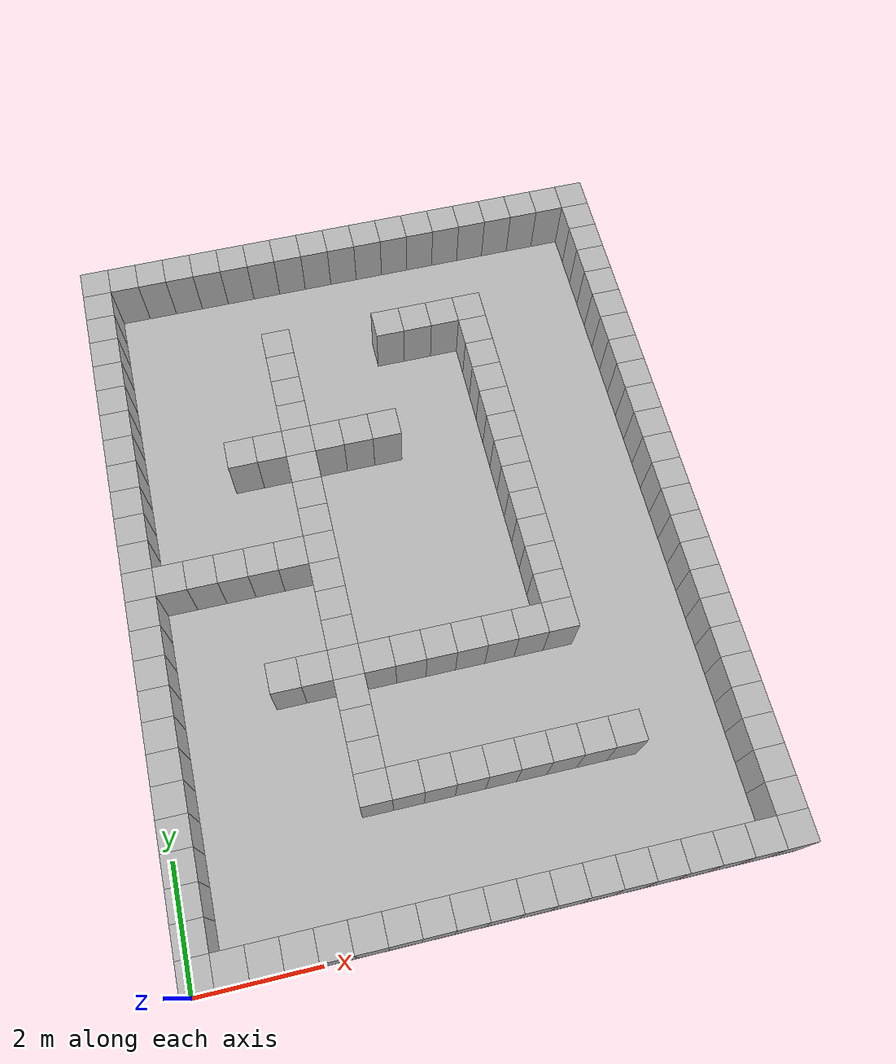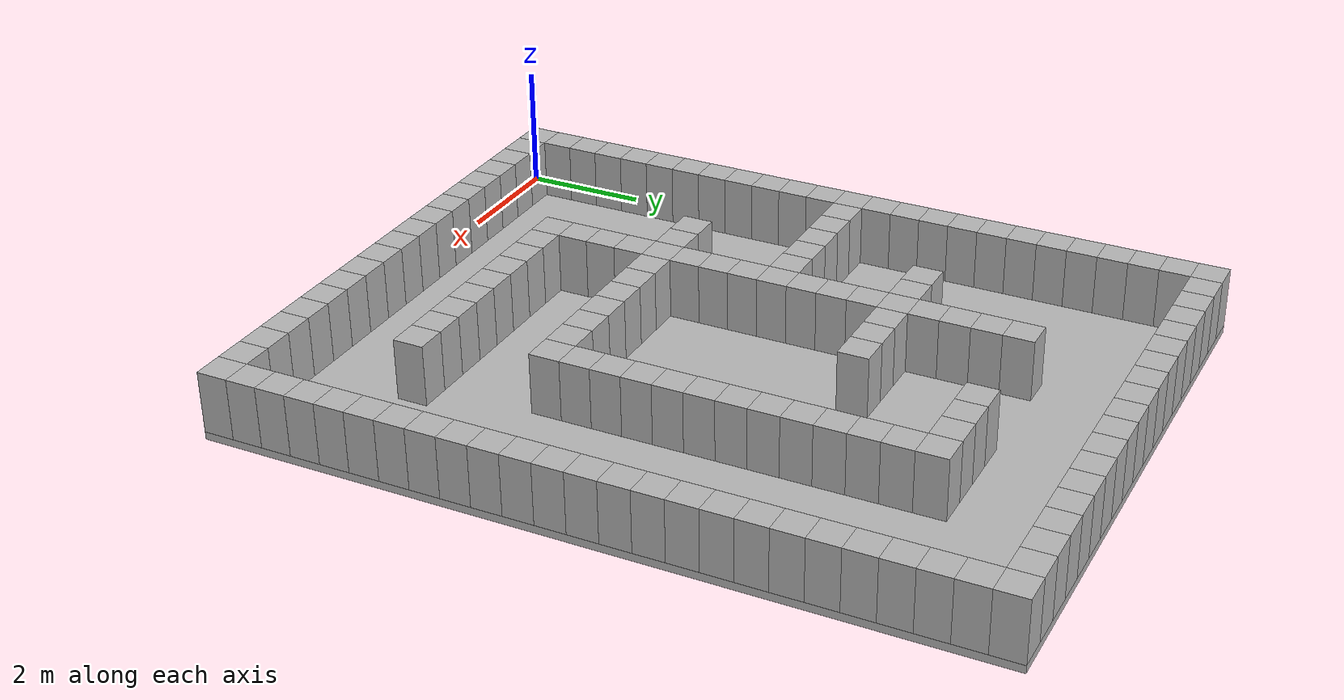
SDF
<sdf version="1.5">
  <model name="map">
    <static>1</static>
    <link name="map">
      <collision name="floor">
        <pose>4.75 6.25 -0.0625 0 0 0</pose>
        <geometry>
          <box>
            <size>9.5 12.5 0.125</size>
          </box>
        </geometry>
      </collision>
      <visual name="floor">
        <pose>4.75 6.25 -0.0625 0 0 0</pose>
        <geometry>
          <box>
            <size>9.5 12.5 0.125</size>
          </box>
        </geometry>
      </visual>
      <collision name="box_0_0">
        <pose>0.25 0.25 0.5 0 0 0</pose>
        <geometry>
          <box>
            <size>0.5 0.5 1.0</size>
          </box>
        </geometry>
      </collision>
      <visual name="box_0_0">
        <pose>0.25 0.25 0.5 0 0 0</pose>
        <geometry>
          <box>
            <size>0.5 0.5 1.0</size>
          </box>
        </geometry>
      </visual>
      <collision name="box_0_1">
        <pose>0.25 0.75 0.5 0 0 0</pose>
        <geometry>
          <box>
            <size>0.5 0.5 1.0</size>
          </box>
        </geometry>
      </collision>
      <visual name="box_0_1">
        <pose>0.25 0.75 0.5 0 0 0</pose>
        <geometry>
          <box>
            <size>0.5 0.5 1.0</size>
          </box>
        </geometry>
      </visual>
      <collision name="box_0_2">
        <pose>0.25 1.25 0.5 0 0 0</pose>
        <geometry>
          <box>
            <size>0.5 0.5 1.0</size>
          </box>
        </geometry>
      </collision>
      <visual name="box_0_2">
        <pose>0.25 1.25 0.5 0 0 0</pose>
        <geometry>
          <box>
            <size>0.5 0.5 1.0</size>
          </box>
        </geometry>
      </visual>
      <collision name="box_0_3">
        <pose>0.25 1.75 0.5 0 0 0</pose>
        <geometry>
          <box>
            <size>0.5 0.5 1.0</size>
          </box>
        </geometry>
      </collision>
      <visual name="box_0_3">
        <pose>0.25 1.75 0.5 0 0 0</pose>
        <geometry>
          <box>
            <size>0.5 0.5 1.0</size>
          </box>
        </geometry>
      </visual>
      <collision name="box_0_4">
        <pose>0.25 2.25 0.5 0 0 0</pose>
        <geometry>
          <box>
            <size>0.5 0.5 1.0</size>
          </box>
        </geometry>
      </collision>
      <visual name="box_0_4">
        <pose>0.25 2.25 0.5 0 0 0</pose>
        <geometry>
          <box>
            <size>0.5 0.5 1.0</size>
          </box>
        </geometry>
      </visual>
      <collision name="box_0_5">
        <pose>0.25 2.75 0.5 0 0 0</pose>
        <geometry>
          <box>
            <size>0.5 0.5 1.0</size>
          </box>
        </geometry>
      </collision>
      <visual name="box_0_5">
        <pose>0.25 2.75 0.5 0 0 0</pose>
        <geometry>
          <box>
            <size>0.5 0.5 1.0</size>
          </box>
        </geometry>
      </visual>
      <collision name="box_0_6">
        <pose>0.25 3.25 0.5 0 0 0</pose>
        <geometry>
          <box>
            <size>0.5 0.5 1.0</size>
          </box>
        </geometry>
      </collision>
      <visual name="box_0_6">
        <pose>0.25 3.25 0.5 0 0 0</pose>
        <geometry>
          <box>
            <size>0.5 0.5 1.0</size>
          </box>
        </geometry>
      </visual>
      <collision name="box_0_7">
        <pose>0.25 3.75 0.5 0 0 0</pose>
        <geometry>
          <box>
            <size>0.5 0.5 1.0</size>
          </box>
        </geometry>
      </collision>
      <visual name="box_0_7">
        <pose>0.25 3.75 0.5 0 0 0</pose>
        <geometry>
          <box>
            <size>0.5 0.5 1.0</size>
          </box>
        </geometry>
      </visual>
      <collision name="box_0_8">
        <pose>0.25 4.25 0.5 0 0 0</pose>
        <geometry>
          <box>
            <size>0.5 0.5 1.0</size>
          </box>
        </geometry>
      </collision>
      <visual name="box_0_8">
        <pose>0.25 4.25 0.5 0 0 0</pose>
        <geometry>
          <box>
            <size>0.5 0.5 1.0</size>
          </box>
        </geometry>
      </visual>
      <collision name="box_0_9">
        <pose>0.25 4.75 0.5 0 0 0</pose>
        <geometry>
          <box>
            <size>0.5 0.5 1.0</size>
          </box>
        </geometry>
      </collision>
      <visual name="box_0_9">
        <pose>0.25 4.75 0.5 0 0 0</pose>
        <geometry>
          <box>
            <size>0.5 0.5 1.0</size>
          </box>
        </geometry>
      </visual>
      <collision name="box_0_10">
        <pose>0.25 5.25 0.5 0 0 0</pose>
        <geometry>
          <box>
            <size>0.5 0.5 1.0</size>
          </box>
        </geometry>
      </collision>
      <visual name="box_0_10">
        <pose>0.25 5.25 0.5 0 0 0</pose>
        <geometry>
          <box>
            <size>0.5 0.5 1.0</size>
          </box>
        </geometry>
      </visual>
      <collision name="box_0_11">
        <pose>0.25 5.75 0.5 0 0 0</pose>
        <geometry>
          <box>
            <size>0.5 0.5 1.0</size>
          </box>
        </geometry>
      </collision>
      <visual name="box_0_11">
        <pose>0.25 5.75 0.5 0 0 0</pose>
        <geometry>
          <box>
            <size>0.5 0.5 1.0</size>
          </box>
        </geometry>
      </visual>
      <collision name="box_0_12">
        <pose>0.25 6.25 0.5 0 0 0</pose>
        <geometry>
          <box>
            <size>0.5 0.5 1.0</size>
          </box>
        </geometry>
      </collision>
      <visual name="box_0_12">
        <pose>0.25 6.25 0.5 0 0 0</pose>
        <geometry>
          <box>
            <size>0.5 0.5 1.0</size>
          </box>
        </geometry>
      </visual>
      <collision name="box_0_13">
        <pose>0.25 6.75 0.5 0 0 0</pose>
        <geometry>
          <box>
            <size>0.5 0.5 1.0</size>
          </box>
        </geometry>
      </collision>
      <visual name="box_0_13">
        <pose>0.25 6.75 0.5 0 0 0</pose>
        <geometry>
          <box>
            <size>0.5 0.5 1.0</size>
          </box>
        </geometry>
      </visual>
      <collision name="box_0_14">
        <pose>0.25 7.25 0.5 0 0 0</pose>
        <geometry>
          <box>
            <size>0.5 0.5 1.0</size>
          </box>
        </geometry>
      </collision>
      <visual name="box_0_14">
        <pose>0.25 7.25 0.5 0 0 0</pose>
        <geometry>
          <box>
            <size>0.5 0.5 1.0</size>
          </box>
        </geometry>
      </visual>
      <collision name="box_0_15">
        <pose>0.25 7.75 0.5 0 0 0</pose>
        <geometry>
          <box>
            <size>0.5 0.5 1.0</size>
          </box>
        </geometry>
      </collision>
      <visual name="box_0_15">
        <pose>0.25 7.75 0.5 0 0 0</pose>
        <geometry>
          <box>
            <size>0.5 0.5 1.0</size>
          </box>
        </geometry>
      </visual>
      <collision name="box_0_16">
        <pose>0.25 8.25 0.5 0 0 0</pose>
        <geometry>
          <box>
            <size>0.5 0.5 1.0</size>
          </box>
        </geometry>
      </collision>
      <visual name="box_0_16">
        <pose>0.25 8.25 0.5 0 0 0</pose>
        <geometry>
          <box>
            <size>0.5 0.5 1.0</size>
          </box>
        </geometry>
      </visual>
      <collision name="box_0_17">
        <pose>0.25 8.75 0.5 0 0 0</pose>
        <geometry>
          <box>
            <size>0.5 0.5 1.0</size>
          </box>
        </geometry>
      </collision>
      <visual name="box_0_17">
        <pose>0.25 8.75 0.5 0 0 0</pose>
        <geometry>
          <box>
            <size>0.5 0.5 1.0</size>
          </box>
        </geometry>
      </visual>
      <collision name="box_0_18">
        <pose>0.25 9.25 0.5 0 0 0</pose>
        <geometry>
          <box>
            <size>0.5 0.5 1.0</size>
          </box>
        </geometry>
      </collision>
      <visual name="box_0_18">
        <pose>0.25 9.25 0.5 0 0 0</pose>
        <geometry>
          <box>
            <size>0.5 0.5 1.0</size>
          </box>
        </geometry>
      </visual>
      <collision name="box_0_19">
        <pose>0.25 9.75 0.5 0 0 0</pose>
        <geometry>
          <box>
            <size>0.5 0.5 1.0</size>
          </box>
        </geometry>
      </collision>
      <visual name="box_0_19">
        <pose>0.25 9.75 0.5 0 0 0</pose>
        <geometry>
          <box>
            <size>0.5 0.5 1.0</size>
          </box>
        </geometry>
      </visual>
      <collision name="box_0_20">
        <pose>0.25 10.25 0.5 0 0 0</pose>
        <geometry>
          <box>
            <size>0.5 0.5 1.0</size>
          </box>
        </geometry>
      </collision>
      <visual name="box_0_20">
        <pose>0.25 10.25 0.5 0 0 0</pose>
        <geometry>
          <box>
            <size>0.5 0.5 1.0</size>
          </box>
        </geometry>
      </visual>
      <collision name="box_0_21">
        <pose>0.25 10.75 0.5 0 0 0</pose>
        <geometry>
          <box>
            <size>0.5 0.5 1.0</size>
          </box>
        </geometry>
      </collision>
      <visual name="box_0_21">
        <pose>0.25 10.75 0.5 0 0 0</pose>
        <geometry>
          <box>
            <size>0.5 0.5 1.0</size>
          </box>
        </geometry>
      </visual>
      <collision name="box_0_22">
        <pose>0.25 11.25 0.5 0 0 0</pose>
        <geometry>
          <box>
            <size>0.5 0.5 1.0</size>
          </box>
        </geometry>
      </collision>
      <visual name="box_0_22">
        <pose>0.25 11.25 0.5 0 0 0</pose>
        <geometry>
          <box>
            <size>0.5 0.5 1.0</size>
          </box>
        </geometry>
      </visual>
      <collision name="box_0_23">
        <pose>0.25 11.75 0.5 0 0 0</pose>
        <geometry>
          <box>
            <size>0.5 0.5 1.0</size>
          </box>
        </geometry>
      </collision>
      <visual name="box_0_23">
        <pose>0.25 11.75 0.5 0 0 0</pose>
        <geometry>
          <box>
            <size>0.5 0.5 1.0</size>
          </box>
        </geometry>
      </visual>
      <collision name="box_0_24">
        <pose>0.25 12.25 0.5 0 0 0</pose>
        <geometry>
          <box>
            <size>0.5 0.5 1.0</size>
          </box>
        </geometry>
      </collision>
      <visual name="box_0_24">
        <pose>0.25 12.25 0.5 0 0 0</pose>
        <geometry>
          <box>
            <size>0.5 0.5 1.0</size>
          </box>
        </geometry>
      </visual>
      <collision name="box_1_0">
        <pose>0.75 0.25 0.5 0 0 0</pose>
        <geometry>
          <box>
            <size>0.5 0.5 1.0</size>
          </box>
        </geometry>
      </collision>
      <visual name="box_1_0">
        <pose>0.75 0.25 0.5 0 0 0</pose>
        <geometry>
          <box>
            <size>0.5 0.5 1.0</size>
          </box>
        </geometry>
      </visual>
      <collision name="box_1_12">
        <pose>0.75 6.25 0.5 0 0 0</pose>
        <geometry>
          <box>
            <size>0.5 0.5 1.0</size>
          </box>
        </geometry>
      </collision>
      <visual name="box_1_12">
        <pose>0.75 6.25 0.5 0 0 0</pose>
        <geometry>
          <box>
            <size>0.5 0.5 1.0</size>
          </box>
        </geometry>
      </visual>
      <collision name="box_1_24">
        <pose>0.75 12.25 0.5 0 0 0</pose>
        <geometry>
          <box>
            <size>0.5 0.5 1.0</size>
          </box>
        </geometry>
      </collision>
      <visual name="box_1_24">
        <pose>0.75 12.25 0.5 0 0 0</pose>
        <geometry>
          <box>
            <size>0.5 0.5 1.0</size>
          </box>
        </geometry>
      </visual>
      <collision name="box_2_0">
        <pose>1.25 0.25 0.5 0 0 0</pose>
        <geometry>
          <box>
            <size>0.5 0.5 1.0</size>
          </box>
        </geometry>
      </collision>
      <visual name="box_2_0">
        <pose>1.25 0.25 0.5 0 0 0</pose>
        <geometry>
          <box>
            <size>0.5 0.5 1.0</size>
          </box>
        </geometry>
      </visual>
      <collision name="box_2_12">
        <pose>1.25 6.25 0.5 0 0 0</pose>
        <geometry>
          <box>
            <size>0.5 0.5 1.0</size>
          </box>
        </geometry>
      </collision>
      <visual name="box_2_12">
        <pose>1.25 6.25 0.5 0 0 0</pose>
        <geometry>
          <box>
            <size>0.5 0.5 1.0</size>
          </box>
        </geometry>
      </visual>
      <collision name="box_2_24">
        <pose>1.25 12.25 0.5 0 0 0</pose>
        <geometry>
          <box>
            <size>0.5 0.5 1.0</size>
          </box>
        </geometry>
      </collision>
      <visual name="box_2_24">
        <pose>1.25 12.25 0.5 0 0 0</pose>
        <geometry>
          <box>
            <size>0.5 0.5 1.0</size>
          </box>
        </geometry>
      </visual>
      <collision name="box_3_0">
        <pose>1.75 0.25 0.5 0 0 0</pose>
        <geometry>
          <box>
            <size>0.5 0.5 1.0</size>
          </box>
        </geometry>
      </collision>
      <visual name="box_3_0">
        <pose>1.75 0.25 0.5 0 0 0</pose>
        <geometry>
          <box>
            <size>0.5 0.5 1.0</size>
          </box>
        </geometry>
      </visual>
      <collision name="box_3_12">
        <pose>1.75 6.25 0.5 0 0 0</pose>
        <geometry>
          <box>
            <size>0.5 0.5 1.0</size>
          </box>
        </geometry>
      </collision>
      <visual name="box_3_12">
        <pose>1.75 6.25 0.5 0 0 0</pose>
        <geometry>
          <box>
            <size>0.5 0.5 1.0</size>
          </box>
        </geometry>
      </visual>
      <collision name="box_3_24">
        <pose>1.75 12.25 0.5 0 0 0</pose>
        <geometry>
          <box>
            <size>0.5 0.5 1.0</size>
          </box>
        </geometry>
      </collision>
      <visual name="box_3_24">
        <pose>1.75 12.25 0.5 0 0 0</pose>
        <geometry>
          <box>
            <size>0.5 0.5 1.0</size>
          </box>
        </geometry>
      </visual>
      <collision name="box_4_0">
        <pose>2.25 0.25 0.5 0 0 0</pose>
        <geometry>
          <box>
            <size>0.5 0.5 1.0</size>
          </box>
        </geometry>
      </collision>
      <visual name="box_4_0">
        <pose>2.25 0.25 0.5 0 0 0</pose>
        <geometry>
          <box>
            <size>0.5 0.5 1.0</size>
          </box>
        </geometry>
      </visual>
      <collision name="box_4_8">
        <pose>2.25 4.25 0.5 0 0 0</pose>
        <geometry>
          <box>
            <size>0.5 0.5 1.0</size>
          </box>
        </geometry>
      </collision>
      <visual name="box_4_8">
        <pose>2.25 4.25 0.5 0 0 0</pose>
        <geometry>
          <box>
            <size>0.5 0.5 1.0</size>
          </box>
        </geometry>
      </visual>
      <collision name="box_4_12">
        <pose>2.25 6.25 0.5 0 0 0</pose>
        <geometry>
          <box>
            <size>0.5 0.5 1.0</size>
          </box>
        </geometry>
      </collision>
      <visual name="box_4_12">
        <pose>2.25 6.25 0.5 0 0 0</pose>
        <geometry>
          <box>
            <size>0.5 0.5 1.0</size>
          </box>
        </geometry>
      </visual>
      <collision name="box_4_16">
        <pose>2.25 8.25 0.5 0 0 0</pose>
        <geometry>
          <box>
            <size>0.5 0.5 1.0</size>
          </box>
        </geometry>
      </collision>
      <visual name="box_4_16">
        <pose>2.25 8.25 0.5 0 0 0</pose>
        <geometry>
          <box>
            <size>0.5 0.5 1.0</size>
          </box>
        </geometry>
      </visual>
      <collision name="box_4_24">
        <pose>2.25 12.25 0.5 0 0 0</pose>
        <geometry>
          <box>
            <size>0.5 0.5 1.0</size>
          </box>
        </geometry>
      </collision>
      <visual name="box_4_24">
        <pose>2.25 12.25 0.5 0 0 0</pose>
        <geometry>
          <box>
            <size>0.5 0.5 1.0</size>
          </box>
        </geometry>
      </visual>
      <collision name="box_5_0">
        <pose>2.75 0.25 0.5 0 0 0</pose>
        <geometry>
          <box>
            <size>0.5 0.5 1.0</size>
          </box>
        </geometry>
      </collision>
      <visual name="box_5_0">
        <pose>2.75 0.25 0.5 0 0 0</pose>
        <geometry>
          <box>
            <size>0.5 0.5 1.0</size>
          </box>
        </geometry>
      </visual>
      <collision name="box_5_8">
        <pose>2.75 4.25 0.5 0 0 0</pose>
        <geometry>
          <box>
            <size>0.5 0.5 1.0</size>
          </box>
        </geometry>
      </collision>
      <visual name="box_5_8">
        <pose>2.75 4.25 0.5 0 0 0</pose>
        <geometry>
          <box>
            <size>0.5 0.5 1.0</size>
          </box>
        </geometry>
      </visual>
      <collision name="box_5_12">
        <pose>2.75 6.25 0.5 0 0 0</pose>
        <geometry>
          <box>
            <size>0.5 0.5 1.0</size>
          </box>
        </geometry>
      </collision>
      <visual name="box_5_12">
        <pose>2.75 6.25 0.5 0 0 0</pose>
        <geometry>
          <box>
            <size>0.5 0.5 1.0</size>
          </box>
        </geometry>
      </visual>
      <collision name="box_5_16">
        <pose>2.75 8.25 0.5 0 0 0</pose>
        <geometry>
          <box>
            <size>0.5 0.5 1.0</size>
          </box>
        </geometry>
      </collision>
      <visual name="box_5_16">
        <pose>2.75 8.25 0.5 0 0 0</pose>
        <geometry>
          <box>
            <size>0.5 0.5 1.0</size>
          </box>
        </geometry>
      </visual>
      <collision name="box_5_24">
        <pose>2.75 12.25 0.5 0 0 0</pose>
        <geometry>
          <box>
            <size>0.5 0.5 1.0</size>
          </box>
        </geometry>
      </collision>
      <visual name="box_5_24">
        <pose>2.75 12.25 0.5 0 0 0</pose>
        <geometry>
          <box>
            <size>0.5 0.5 1.0</size>
          </box>
        </geometry>
      </visual>
      <collision name="box_6_0">
        <pose>3.25 0.25 0.5 0 0 0</pose>
        <geometry>
          <box>
            <size>0.5 0.5 1.0</size>
          </box>
        </geometry>
      </collision>
      <visual name="box_6_0">
        <pose>3.25 0.25 0.5 0 0 0</pose>
        <geometry>
          <box>
            <size>0.5 0.5 1.0</size>
          </box>
        </geometry>
      </visual>
      <collision name="box_6_4">
        <pose>3.25 2.25 0.5 0 0 0</pose>
        <geometry>
          <box>
            <size>0.5 0.5 1.0</size>
          </box>
        </geometry>
      </collision>
      <visual name="box_6_4">
        <pose>3.25 2.25 0.5 0 0 0</pose>
        <geometry>
          <box>
            <size>0.5 0.5 1.0</size>
          </box>
        </geometry>
      </visual>
      <collision name="box_6_5">
        <pose>3.25 2.75 0.5 0 0 0</pose>
        <geometry>
          <box>
            <size>0.5 0.5 1.0</size>
          </box>
        </geometry>
      </collision>
      <visual name="box_6_5">
        <pose>3.25 2.75 0.5 0 0 0</pose>
        <geometry>
          <box>
            <size>0.5 0.5 1.0</size>
          </box>
        </geometry>
      </visual>
      <collision name="box_6_6">
        <pose>3.25 3.25 0.5 0 0 0</pose>
        <geometry>
          <box>
            <size>0.5 0.5 1.0</size>
          </box>
        </geometry>
      </collision>
      <visual name="box_6_6">
        <pose>3.25 3.25 0.5 0 0 0</pose>
        <geometry>
          <box>
            <size>0.5 0.5 1.0</size>
          </box>
        </geometry>
      </visual>
      <collision name="box_6_7">
        <pose>3.25 3.75 0.5 0 0 0</pose>
        <geometry>
          <box>
            <size>0.5 0.5 1.0</size>
          </box>
        </geometry>
      </collision>
      <visual name="box_6_7">
        <pose>3.25 3.75 0.5 0 0 0</pose>
        <geometry>
          <box>
            <size>0.5 0.5 1.0</size>
          </box>
        </geometry>
      </visual>
      <collision name="box_6_8">
        <pose>3.25 4.25 0.5 0 0 0</pose>
        <geometry>
          <box>
            <size>0.5 0.5 1.0</size>
          </box>
        </geometry>
      </collision>
      <visual name="box_6_8">
        <pose>3.25 4.25 0.5 0 0 0</pose>
        <geometry>
          <box>
            <size>0.5 0.5 1.0</size>
          </box>
        </geometry>
      </visual>
      <collision name="box_6_9">
        <pose>3.25 4.75 0.5 0 0 0</pose>
        <geometry>
          <box>
            <size>0.5 0.5 1.0</size>
          </box>
        </geometry>
      </collision>
      <visual name="box_6_9">
        <pose>3.25 4.75 0.5 0 0 0</pose>
        <geometry>
          <box>
            <size>0.5 0.5 1.0</size>
          </box>
        </geometry>
      </visual>
      <collision name="box_6_10">
        <pose>3.25 5.25 0.5 0 0 0</pose>
        <geometry>
          <box>
            <size>0.5 0.5 1.0</size>
          </box>
        </geometry>
      </collision>
      <visual name="box_6_10">
        <pose>3.25 5.25 0.5 0 0 0</pose>
        <geometry>
          <box>
            <size>0.5 0.5 1.0</size>
          </box>
        </geometry>
      </visual>
      <collision name="box_6_11">
        <pose>3.25 5.75 0.5 0 0 0</pose>
        <geometry>
          <box>
            <size>0.5 0.5 1.0</size>
          </box>
        </geometry>
      </collision>
      <visual name="box_6_11">
        <pose>3.25 5.75 0.5 0 0 0</pose>
        <geometry>
          <box>
            <size>0.5 0.5 1.0</size>
          </box>
        </geometry>
      </visual>
      <collision name="box_6_12">
        <pose>3.25 6.25 0.5 0 0 0</pose>
        <geometry>
          <box>
            <size>0.5 0.5 1.0</size>
          </box>
        </geometry>
      </collision>
      <visual name="box_6_12">
        <pose>3.25 6.25 0.5 0 0 0</pose>
        <geometry>
          <box>
            <size>0.5 0.5 1.0</size>
          </box>
        </geometry>
      </visual>
      <collision name="box_6_13">
        <pose>3.25 6.75 0.5 0 0 0</pose>
        <geometry>
          <box>
            <size>0.5 0.5 1.0</size>
          </box>
        </geometry>
      </collision>
      <visual name="box_6_13">
        <pose>3.25 6.75 0.5 0 0 0</pose>
        <geometry>
          <box>
            <size>0.5 0.5 1.0</size>
          </box>
        </geometry>
      </visual>
      <collision name="box_6_14">
        <pose>3.25 7.25 0.5 0 0 0</pose>
        <geometry>
          <box>
            <size>0.5 0.5 1.0</size>
          </box>
        </geometry>
      </collision>
      <visual name="box_6_14">
        <pose>3.25 7.25 0.5 0 0 0</pose>
        <geometry>
          <box>
            <size>0.5 0.5 1.0</size>
          </box>
        </geometry>
      </visual>
      <collision name="box_6_15">
        <pose>3.25 7.75 0.5 0 0 0</pose>
        <geometry>
          <box>
            <size>0.5 0.5 1.0</size>
          </box>
        </geometry>
      </collision>
      <visual name="box_6_15">
        <pose>3.25 7.75 0.5 0 0 0</pose>
        <geometry>
          <box>
            <size>0.5 0.5 1.0</size>
          </box>
        </geometry>
      </visual>
      <collision name="box_6_16">
        <pose>3.25 8.25 0.5 0 0 0</pose>
        <geometry>
          <box>
            <size>0.5 0.5 1.0</size>
          </box>
        </geometry>
      </collision>
      <visual name="box_6_16">
        <pose>3.25 8.25 0.5 0 0 0</pose>
        <geometry>
          <box>
            <size>0.5 0.5 1.0</size>
          </box>
        </geometry>
      </visual>
      <collision name="box_6_17">
        <pose>3.25 8.75 0.5 0 0 0</pose>
        <geometry>
          <box>
            <size>0.5 0.5 1.0</size>
          </box>
        </geometry>
      </collision>
      <visual name="box_6_17">
        <pose>3.25 8.75 0.5 0 0 0</pose>
        <geometry>
          <box>
            <size>0.5 0.5 1.0</size>
          </box>
        </geometry>
      </visual>
      <collision name="box_6_18">
        <pose>3.25 9.25 0.5 0 0 0</pose>
        <geometry>
          <box>
            <size>0.5 0.5 1.0</size>
          </box>
        </geometry>
      </collision>
      <visual name="box_6_18">
        <pose>3.25 9.25 0.5 0 0 0</pose>
        <geometry>
          <box>
            <size>0.5 0.5 1.0</size>
          </box>
        </geometry>
      </visual>
      <collision name="box_6_19">
        <pose>3.25 9.75 0.5 0 0 0</pose>
        <geometry>
          <box>
            <size>0.5 0.5 1.0</size>
          </box>
        </geometry>
      </collision>
      <visual name="box_6_19">
        <pose>3.25 9.75 0.5 0 0 0</pose>
        <geometry>
          <box>
            <size>0.5 0.5 1.0</size>
          </box>
        </geometry>
      </visual>
      <collision name="box_6_20">
        <pose>3.25 10.25 0.5 0 0 0</pose>
        <geometry>
          <box>
            <size>0.5 0.5 1.0</size>
          </box>
        </geometry>
      </collision>
      <visual name="box_6_20">
        <pose>3.25 10.25 0.5 0 0 0</pose>
        <geometry>
          <box>
            <size>0.5 0.5 1.0</size>
          </box>
        </geometry>
      </visual>
      <collision name="box_6_24">
        <pose>3.25 12.25 0.5 0 0 0</pose>
        <geometry>
          <box>
            <size>0.5 0.5 1.0</size>
          </box>
        </geometry>
      </collision>
      <visual name="box_6_24">
        <pose>3.25 12.25 0.5 0 0 0</pose>
        <geometry>
          <box>
            <size>0.5 0.5 1.0</size>
          </box>
        </geometry>
      </visual>
      <collision name="box_7_0">
        <pose>3.75 0.25 0.5 0 0 0</pose>
        <geometry>
          <box>
            <size>0.5 0.5 1.0</size>
          </box>
        </geometry>
      </collision>
      <visual name="box_7_0">
        <pose>3.75 0.25 0.5 0 0 0</pose>
        <geometry>
          <box>
            <size>0.5 0.5 1.0</size>
          </box>
        </geometry>
      </visual>
      <collision name="box_7_4">
        <pose>3.75 2.25 0.5 0 0 0</pose>
        <geometry>
          <box>
            <size>0.5 0.5 1.0</size>
          </box>
        </geometry>
      </collision>
      <visual name="box_7_4">
        <pose>3.75 2.25 0.5 0 0 0</pose>
        <geometry>
          <box>
            <size>0.5 0.5 1.0</size>
          </box>
        </geometry>
      </visual>
      <collision name="box_7_8">
        <pose>3.75 4.25 0.5 0 0 0</pose>
        <geometry>
          <box>
            <size>0.5 0.5 1.0</size>
          </box>
        </geometry>
      </collision>
      <visual name="box_7_8">
        <pose>3.75 4.25 0.5 0 0 0</pose>
        <geometry>
          <box>
            <size>0.5 0.5 1.0</size>
          </box>
        </geometry>
      </visual>
      <collision name="box_7_16">
        <pose>3.75 8.25 0.5 0 0 0</pose>
        <geometry>
          <box>
            <size>0.5 0.5 1.0</size>
          </box>
        </geometry>
      </collision>
      <visual name="box_7_16">
        <pose>3.75 8.25 0.5 0 0 0</pose>
        <geometry>
          <box>
            <size>0.5 0.5 1.0</size>
          </box>
        </geometry>
      </visual>
      <collision name="box_7_24">
        <pose>3.75 12.25 0.5 0 0 0</pose>
        <geometry>
          <box>
            <size>0.5 0.5 1.0</size>
          </box>
        </geometry>
      </collision>
      <visual name="box_7_24">
        <pose>3.75 12.25 0.5 0 0 0</pose>
        <geometry>
          <box>
            <size>0.5 0.5 1.0</size>
          </box>
        </geometry>
      </visual>
      <collision name="box_8_0">
        <pose>4.25 0.25 0.5 0 0 0</pose>
        <geometry>
          <box>
            <size>0.5 0.5 1.0</size>
          </box>
        </geometry>
      </collision>
      <visual name="box_8_0">
        <pose>4.25 0.25 0.5 0 0 0</pose>
        <geometry>
          <box>
            <size>0.5 0.5 1.0</size>
          </box>
        </geometry>
      </visual>
      <collision name="box_8_4">
        <pose>4.25 2.25 0.5 0 0 0</pose>
        <geometry>
          <box>
            <size>0.5 0.5 1.0</size>
          </box>
        </geometry>
      </collision>
      <visual name="box_8_4">
        <pose>4.25 2.25 0.5 0 0 0</pose>
        <geometry>
          <box>
            <size>0.5 0.5 1.0</size>
          </box>
        </geometry>
      </visual>
      <collision name="box_8_8">
        <pose>4.25 4.25 0.5 0 0 0</pose>
        <geometry>
          <box>
            <size>0.5 0.5 1.0</size>
          </box>
        </geometry>
      </collision>
      <visual name="box_8_8">
        <pose>4.25 4.25 0.5 0 0 0</pose>
        <geometry>
          <box>
            <size>0.5 0.5 1.0</size>
          </box>
        </geometry>
      </visual>
      <collision name="box_8_16">
        <pose>4.25 8.25 0.5 0 0 0</pose>
        <geometry>
          <box>
            <size>0.5 0.5 1.0</size>
          </box>
        </geometry>
      </collision>
      <visual name="box_8_16">
        <pose>4.25 8.25 0.5 0 0 0</pose>
        <geometry>
          <box>
            <size>0.5 0.5 1.0</size>
          </box>
        </geometry>
      </visual>
      <collision name="box_8_24">
        <pose>4.25 12.25 0.5 0 0 0</pose>
        <geometry>
          <box>
            <size>0.5 0.5 1.0</size>
          </box>
        </geometry>
      </collision>
      <visual name="box_8_24">
        <pose>4.25 12.25 0.5 0 0 0</pose>
        <geometry>
          <box>
            <size>0.5 0.5 1.0</size>
          </box>
        </geometry>
      </visual>
      <collision name="box_9_0">
        <pose>4.75 0.25 0.5 0 0 0</pose>
        <geometry>
          <box>
            <size>0.5 0.5 1.0</size>
          </box>
        </geometry>
      </collision>
      <visual name="box_9_0">
        <pose>4.75 0.25 0.5 0 0 0</pose>
        <geometry>
          <box>
            <size>0.5 0.5 1.0</size>
          </box>
        </geometry>
      </visual>
      <collision name="box_9_4">
        <pose>4.75 2.25 0.5 0 0 0</pose>
        <geometry>
          <box>
            <size>0.5 0.5 1.0</size>
          </box>
        </geometry>
      </collision>
      <visual name="box_9_4">
        <pose>4.75 2.25 0.5 0 0 0</pose>
        <geometry>
          <box>
            <size>0.5 0.5 1.0</size>
          </box>
        </geometry>
      </visual>
      <collision name="box_9_8">
        <pose>4.75 4.25 0.5 0 0 0</pose>
        <geometry>
          <box>
            <size>0.5 0.5 1.0</size>
          </box>
        </geometry>
      </collision>
      <visual name="box_9_8">
        <pose>4.75 4.25 0.5 0 0 0</pose>
        <geometry>
          <box>
            <size>0.5 0.5 1.0</size>
          </box>
        </geometry>
      </visual>
      <collision name="box_9_16">
        <pose>4.75 8.25 0.5 0 0 0</pose>
        <geometry>
          <box>
            <size>0.5 0.5 1.0</size>
          </box>
        </geometry>
      </collision>
      <visual name="box_9_16">
        <pose>4.75 8.25 0.5 0 0 0</pose>
        <geometry>
          <box>
            <size>0.5 0.5 1.0</size>
          </box>
        </geometry>
      </visual>
      <collision name="box_9_24">
        <pose>4.75 12.25 0.5 0 0 0</pose>
        <geometry>
          <box>
            <size>0.5 0.5 1.0</size>
          </box>
        </geometry>
      </collision>
      <visual name="box_9_24">
        <pose>4.75 12.25 0.5 0 0 0</pose>
        <geometry>
          <box>
            <size>0.5 0.5 1.0</size>
          </box>
        </geometry>
      </visual>
      <collision name="box_10_0">
        <pose>5.25 0.25 0.5 0 0 0</pose>
        <geometry>
          <box>
            <size>0.5 0.5 1.0</size>
          </box>
        </geometry>
      </collision>
      <visual name="box_10_0">
        <pose>5.25 0.25 0.5 0 0 0</pose>
        <geometry>
          <box>
            <size>0.5 0.5 1.0</size>
          </box>
        </geometry>
      </visual>
      <collision name="box_10_4">
        <pose>5.25 2.25 0.5 0 0 0</pose>
        <geometry>
          <box>
            <size>0.5 0.5 1.0</size>
          </box>
        </geometry>
      </collision>
      <visual name="box_10_4">
        <pose>5.25 2.25 0.5 0 0 0</pose>
        <geometry>
          <box>
            <size>0.5 0.5 1.0</size>
          </box>
        </geometry>
      </visual>
      <collision name="box_10_8">
        <pose>5.25 4.25 0.5 0 0 0</pose>
        <geometry>
          <box>
            <size>0.5 0.5 1.0</size>
          </box>
        </geometry>
      </collision>
      <visual name="box_10_8">
        <pose>5.25 4.25 0.5 0 0 0</pose>
        <geometry>
          <box>
            <size>0.5 0.5 1.0</size>
          </box>
        </geometry>
      </visual>
      <collision name="box_10_20">
        <pose>5.25 10.25 0.5 0 0 0</pose>
        <geometry>
          <box>
            <size>0.5 0.5 1.0</size>
          </box>
        </geometry>
      </collision>
      <visual name="box_10_20">
        <pose>5.25 10.25 0.5 0 0 0</pose>
        <geometry>
          <box>
            <size>0.5 0.5 1.0</size>
          </box>
        </geometry>
      </visual>
      <collision name="box_10_24">
        <pose>5.25 12.25 0.5 0 0 0</pose>
        <geometry>
          <box>
            <size>0.5 0.5 1.0</size>
          </box>
        </geometry>
      </collision>
      <visual name="box_10_24">
        <pose>5.25 12.25 0.5 0 0 0</pose>
        <geometry>
          <box>
            <size>0.5 0.5 1.0</size>
          </box>
        </geometry>
      </visual>
      <collision name="box_11_0">
        <pose>5.75 0.25 0.5 0 0 0</pose>
        <geometry>
          <box>
            <size>0.5 0.5 1.0</size>
          </box>
        </geometry>
      </collision>
      <visual name="box_11_0">
        <pose>5.75 0.25 0.5 0 0 0</pose>
        <geometry>
          <box>
            <size>0.5 0.5 1.0</size>
          </box>
        </geometry>
      </visual>
      <collision name="box_11_4">
        <pose>5.75 2.25 0.5 0 0 0</pose>
        <geometry>
          <box>
            <size>0.5 0.5 1.0</size>
          </box>
        </geometry>
      </collision>
      <visual name="box_11_4">
        <pose>5.75 2.25 0.5 0 0 0</pose>
        <geometry>
          <box>
            <size>0.5 0.5 1.0</size>
          </box>
        </geometry>
      </visual>
      <collision name="box_11_8">
        <pose>5.75 4.25 0.5 0 0 0</pose>
        <geometry>
          <box>
            <size>0.5 0.5 1.0</size>
          </box>
        </geometry>
      </collision>
      <visual name="box_11_8">
        <pose>5.75 4.25 0.5 0 0 0</pose>
        <geometry>
          <box>
            <size>0.5 0.5 1.0</size>
          </box>
        </geometry>
      </visual>
      <collision name="box_11_20">
        <pose>5.75 10.25 0.5 0 0 0</pose>
        <geometry>
          <box>
            <size>0.5 0.5 1.0</size>
          </box>
        </geometry>
      </collision>
      <visual name="box_11_20">
        <pose>5.75 10.25 0.5 0 0 0</pose>
        <geometry>
          <box>
            <size>0.5 0.5 1.0</size>
          </box>
        </geometry>
      </visual>
      <collision name="box_11_24">
        <pose>5.75 12.25 0.5 0 0 0</pose>
        <geometry>
          <box>
            <size>0.5 0.5 1.0</size>
          </box>
        </geometry>
      </collision>
      <visual name="box_11_24">
        <pose>5.75 12.25 0.5 0 0 0</pose>
        <geometry>
          <box>
            <size>0.5 0.5 1.0</size>
          </box>
        </geometry>
      </visual>
      <collision name="box_12_0">
        <pose>6.25 0.25 0.5 0 0 0</pose>
        <geometry>
          <box>
            <size>0.5 0.5 1.0</size>
          </box>
        </geometry>
      </collision>
      <visual name="box_12_0">
        <pose>6.25 0.25 0.5 0 0 0</pose>
        <geometry>
          <box>
            <size>0.5 0.5 1.0</size>
          </box>
        </geometry>
      </visual>
      <collision name="box_12_4">
        <pose>6.25 2.25 0.5 0 0 0</pose>
        <geometry>
          <box>
            <size>0.5 0.5 1.0</size>
          </box>
        </geometry>
      </collision>
      <visual name="box_12_4">
        <pose>6.25 2.25 0.5 0 0 0</pose>
        <geometry>
          <box>
            <size>0.5 0.5 1.0</size>
          </box>
        </geometry>
      </visual>
      <collision name="box_12_8">
        <pose>6.25 4.25 0.5 0 0 0</pose>
        <geometry>
          <box>
            <size>0.5 0.5 1.0</size>
          </box>
        </geometry>
      </collision>
      <visual name="box_12_8">
        <pose>6.25 4.25 0.5 0 0 0</pose>
        <geometry>
          <box>
            <size>0.5 0.5 1.0</size>
          </box>
        </geometry>
      </visual>
      <collision name="box_12_20">
        <pose>6.25 10.25 0.5 0 0 0</pose>
        <geometry>
          <box>
            <size>0.5 0.5 1.0</size>
          </box>
        </geometry>
      </collision>
      <visual name="box_12_20">
        <pose>6.25 10.25 0.5 0 0 0</pose>
        <geometry>
          <box>
            <size>0.5 0.5 1.0</size>
          </box>
        </geometry>
      </visual>
      <collision name="box_12_24">
        <pose>6.25 12.25 0.5 0 0 0</pose>
        <geometry>
          <box>
            <size>0.5 0.5 1.0</size>
          </box>
        </geometry>
      </collision>
      <visual name="box_12_24">
        <pose>6.25 12.25 0.5 0 0 0</pose>
        <geometry>
          <box>
            <size>0.5 0.5 1.0</size>
          </box>
        </geometry>
      </visual>
      <collision name="box_13_0">
        <pose>6.75 0.25 0.5 0 0 0</pose>
        <geometry>
          <box>
            <size>0.5 0.5 1.0</size>
          </box>
        </geometry>
      </collision>
      <visual name="box_13_0">
        <pose>6.75 0.25 0.5 0 0 0</pose>
        <geometry>
          <box>
            <size>0.5 0.5 1.0</size>
          </box>
        </geometry>
      </visual>
      <collision name="box_13_4">
        <pose>6.75 2.25 0.5 0 0 0</pose>
        <geometry>
          <box>
            <size>0.5 0.5 1.0</size>
          </box>
        </geometry>
      </collision>
      <visual name="box_13_4">
        <pose>6.75 2.25 0.5 0 0 0</pose>
        <geometry>
          <box>
            <size>0.5 0.5 1.0</size>
          </box>
        </geometry>
      </visual>
      <collision name="box_13_8">
        <pose>6.75 4.25 0.5 0 0 0</pose>
        <geometry>
          <box>
            <size>0.5 0.5 1.0</size>
          </box>
        </geometry>
      </collision>
      <visual name="box_13_8">
        <pose>6.75 4.25 0.5 0 0 0</pose>
        <geometry>
          <box>
            <size>0.5 0.5 1.0</size>
          </box>
        </geometry>
      </visual>
      <collision name="box_13_9">
        <pose>6.75 4.75 0.5 0 0 0</pose>
        <geometry>
          <box>
            <size>0.5 0.5 1.0</size>
          </box>
        </geometry>
      </collision>
      <visual name="box_13_9">
        <pose>6.75 4.75 0.5 0 0 0</pose>
        <geometry>
          <box>
            <size>0.5 0.5 1.0</size>
          </box>
        </geometry>
      </visual>
      <collision name="box_13_10">
        <pose>6.75 5.25 0.5 0 0 0</pose>
        <geometry>
          <box>
            <size>0.5 0.5 1.0</size>
          </box>
        </geometry>
      </collision>
      <visual name="box_13_10">
        <pose>6.75 5.25 0.5 0 0 0</pose>
        <geometry>
          <box>
            <size>0.5 0.5 1.0</size>
          </box>
        </geometry>
      </visual>
      <collision name="box_13_11">
        <pose>6.75 5.75 0.5 0 0 0</pose>
        <geometry>
          <box>
            <size>0.5 0.5 1.0</size>
          </box>
        </geometry>
      </collision>
      <visual name="box_13_11">
        <pose>6.75 5.75 0.5 0 0 0</pose>
        <geometry>
          <box>
            <size>0.5 0.5 1.0</size>
          </box>
        </geometry>
      </visual>
      <collision name="box_13_12">
        <pose>6.75 6.25 0.5 0 0 0</pose>
        <geometry>
          <box>
            <size>0.5 0.5 1.0</size>
          </box>
        </geometry>
      </collision>
      <visual name="box_13_12">
        <pose>6.75 6.25 0.5 0 0 0</pose>
        <geometry>
          <box>
            <size>0.5 0.5 1.0</size>
          </box>
        </geometry>
      </visual>
      <collision name="box_13_13">
        <pose>6.75 6.75 0.5 0 0 0</pose>
        <geometry>
          <box>
            <size>0.5 0.5 1.0</size>
          </box>
        </geometry>
      </collision>
      <visual name="box_13_13">
        <pose>6.75 6.75 0.5 0 0 0</pose>
        <geometry>
          <box>
            <size>0.5 0.5 1.0</size>
          </box>
        </geometry>
      </visual>
      <collision name="box_13_14">
        <pose>6.75 7.25 0.5 0 0 0</pose>
        <geometry>
          <box>
            <size>0.5 0.5 1.0</size>
          </box>
        </geometry>
      </collision>
      <visual name="box_13_14">
        <pose>6.75 7.25 0.5 0 0 0</pose>
        <geometry>
          <box>
            <size>0.5 0.5 1.0</size>
          </box>
        </geometry>
      </visual>
      <collision name="box_13_15">
        <pose>6.75 7.75 0.5 0 0 0</pose>
        <geometry>
          <box>
            <size>0.5 0.5 1.0</size>
          </box>
        </geometry>
      </collision>
      <visual name="box_13_15">
        <pose>6.75 7.75 0.5 0 0 0</pose>
        <geometry>
          <box>
            <size>0.5 0.5 1.0</size>
          </box>
        </geometry>
      </visual>
      <collision name="box_13_16">
        <pose>6.75 8.25 0.5 0 0 0</pose>
        <geometry>
          <box>
            <size>0.5 0.5 1.0</size>
          </box>
        </geometry>
      </collision>
      <visual name="box_13_16">
        <pose>6.75 8.25 0.5 0 0 0</pose>
        <geometry>
          <box>
            <size>0.5 0.5 1.0</size>
          </box>
        </geometry>
      </visual>
      <collision name="box_13_17">
        <pose>6.75 8.75 0.5 0 0 0</pose>
        <geometry>
          <box>
            <size>0.5 0.5 1.0</size>
          </box>
        </geometry>
      </collision>
      <visual name="box_13_17">
        <pose>6.75 8.75 0.5 0 0 0</pose>
        <geometry>
          <box>
            <size>0.5 0.5 1.0</size>
          </box>
        </geometry>
      </visual>
      <collision name="box_13_18">
        <pose>6.75 9.25 0.5 0 0 0</pose>
        <geometry>
          <box>
            <size>0.5 0.5 1.0</size>
          </box>
        </geometry>
      </collision>
      <visual name="box_13_18">
        <pose>6.75 9.25 0.5 0 0 0</pose>
        <geometry>
          <box>
            <size>0.5 0.5 1.0</size>
          </box>
        </geometry>
      </visual>
      <collision name="box_13_19">
        <pose>6.75 9.75 0.5 0 0 0</pose>
        <geometry>
          <box>
            <size>0.5 0.5 1.0</size>
          </box>
        </geometry>
      </collision>
      <visual name="box_13_19">
        <pose>6.75 9.75 0.5 0 0 0</pose>
        <geometry>
          <box>
            <size>0.5 0.5 1.0</size>
          </box>
        </geometry>
      </visual>
      <collision name="box_13_20">
        <pose>6.75 10.25 0.5 0 0 0</pose>
        <geometry>
          <box>
            <size>0.5 0.5 1.0</size>
          </box>
        </geometry>
      </collision>
      <visual name="box_13_20">
        <pose>6.75 10.25 0.5 0 0 0</pose>
        <geometry>
          <box>
            <size>0.5 0.5 1.0</size>
          </box>
        </geometry>
      </visual>
      <collision name="box_13_24">
        <pose>6.75 12.25 0.5 0 0 0</pose>
        <geometry>
          <box>
            <size>0.5 0.5 1.0</size>
          </box>
        </geometry>
      </collision>
      <visual name="box_13_24">
        <pose>6.75 12.25 0.5 0 0 0</pose>
        <geometry>
          <box>
            <size>0.5 0.5 1.0</size>
          </box>
        </geometry>
      </visual>
      <collision name="box_14_0">
        <pose>7.25 0.25 0.5 0 0 0</pose>
        <geometry>
          <box>
            <size>0.5 0.5 1.0</size>
          </box>
        </geometry>
      </collision>
      <visual name="box_14_0">
        <pose>7.25 0.25 0.5 0 0 0</pose>
        <geometry>
          <box>
            <size>0.5 0.5 1.0</size>
          </box>
        </geometry>
      </visual>
      <collision name="box_14_4">
        <pose>7.25 2.25 0.5 0 0 0</pose>
        <geometry>
          <box>
            <size>0.5 0.5 1.0</size>
          </box>
        </geometry>
      </collision>
      <visual name="box_14_4">
        <pose>7.25 2.25 0.5 0 0 0</pose>
        <geometry>
          <box>
            <size>0.5 0.5 1.0</size>
          </box>
        </geometry>
      </visual>
      <collision name="box_14_24">
        <pose>7.25 12.25 0.5 0 0 0</pose>
        <geometry>
          <box>
            <size>0.5 0.5 1.0</size>
          </box>
        </geometry>
      </collision>
      <visual name="box_14_24">
        <pose>7.25 12.25 0.5 0 0 0</pose>
        <geometry>
          <box>
            <size>0.5 0.5 1.0</size>
          </box>
        </geometry>
      </visual>
      <collision name="box_15_0">
        <pose>7.75 0.25 0.5 0 0 0</pose>
        <geometry>
          <box>
            <size>0.5 0.5 1.0</size>
          </box>
        </geometry>
      </collision>
      <visual name="box_15_0">
        <pose>7.75 0.25 0.5 0 0 0</pose>
        <geometry>
          <box>
            <size>0.5 0.5 1.0</size>
          </box>
        </geometry>
      </visual>
      <collision name="box_15_24">
        <pose>7.75 12.25 0.5 0 0 0</pose>
        <geometry>
          <box>
            <size>0.5 0.5 1.0</size>
          </box>
        </geometry>
      </collision>
      <visual name="box_15_24">
        <pose>7.75 12.25 0.5 0 0 0</pose>
        <geometry>
          <box>
            <size>0.5 0.5 1.0</size>
          </box>
        </geometry>
      </visual>
      <collision name="box_16_0">
        <pose>8.25 0.25 0.5 0 0 0</pose>
        <geometry>
          <box>
            <size>0.5 0.5 1.0</size>
          </box>
        </geometry>
      </collision>
      <visual name="box_16_0">
        <pose>8.25 0.25 0.5 0 0 0</pose>
        <geometry>
          <box>
            <size>0.5 0.5 1.0</size>
          </box>
        </geometry>
      </visual>
      <collision name="box_16_24">
        <pose>8.25 12.25 0.5 0 0 0</pose>
        <geometry>
          <box>
            <size>0.5 0.5 1.0</size>
          </box>
        </geometry>
      </collision>
      <visual name="box_16_24">
        <pose>8.25 12.25 0.5 0 0 0</pose>
        <geometry>
          <box>
            <size>0.5 0.5 1.0</size>
          </box>
        </geometry>
      </visual>
      <collision name="box_17_0">
        <pose>8.75 0.25 0.5 0 0 0</pose>
        <geometry>
          <box>
            <size>0.5 0.5 1.0</size>
          </box>
        </geometry>
      </collision>
      <visual name="box_17_0">
        <pose>8.75 0.25 0.5 0 0 0</pose>
        <geometry>
          <box>
            <size>0.5 0.5 1.0</size>
          </box>
        </geometry>
      </visual>
      <collision name="box_17_24">
        <pose>8.75 12.25 0.5 0 0 0</pose>
        <geometry>
          <box>
            <size>0.5 0.5 1.0</size>
          </box>
        </geometry>
      </collision>
      <visual name="box_17_24">
        <pose>8.75 12.25 0.5 0 0 0</pose>
        <geometry>
          <box>
            <size>0.5 0.5 1.0</size>
          </box>
        </geometry>
      </visual>
      <collision name="box_18_0">
        <pose>9.25 0.25 0.5 0 0 0</pose>
        <geometry>
          <box>
            <size>0.5 0.5 1.0</size>
          </box>
        </geometry>
      </collision>
      <visual name="box_18_0">
        <pose>9.25 0.25 0.5 0 0 0</pose>
        <geometry>
          <box>
            <size>0.5 0.5 1.0</size>
          </box>
        </geometry>
      </visual>
      <collision name="box_18_1">
        <pose>9.25 0.75 0.5 0 0 0</pose>
        <geometry>
          <box>
            <size>0.5 0.5 1.0</size>
          </box>
        </geometry>
      </collision>
      <visual name="box_18_1">
        <pose>9.25 0.75 0.5 0 0 0</pose>
        <geometry>
          <box>
            <size>0.5 0.5 1.0</size>
          </box>
        </geometry>
      </visual>
      <collision name="box_18_2">
        <pose>9.25 1.25 0.5 0 0 0</pose>
        <geometry>
          <box>
            <size>0.5 0.5 1.0</size>
          </box>
        </geometry>
      </collision>
      <visual name="box_18_2">
        <pose>9.25 1.25 0.5 0 0 0</pose>
        <geometry>
          <box>
            <size>0.5 0.5 1.0</size>
          </box>
        </geometry>
      </visual>
      <collision name="box_18_3">
        <pose>9.25 1.75 0.5 0 0 0</pose>
        <geometry>
          <box>
            <size>0.5 0.5 1.0</size>
          </box>
        </geometry>
      </collision>
      <visual name="box_18_3">
        <pose>9.25 1.75 0.5 0 0 0</pose>
        <geometry>
          <box>
            <size>0.5 0.5 1.0</size>
          </box>
        </geometry>
      </visual>
      <collision name="box_18_4">
        <pose>9.25 2.25 0.5 0 0 0</pose>
        <geometry>
          <box>
            <size>0.5 0.5 1.0</size>
          </box>
        </geometry>
      </collision>
      <visual name="box_18_4">
        <pose>9.25 2.25 0.5 0 0 0</pose>
        <geometry>
          <box>
            <size>0.5 0.5 1.0</size>
          </box>
        </geometry>
      </visual>
      <collision name="box_18_5">
        <pose>9.25 2.75 0.5 0 0 0</pose>
        <geometry>
          <box>
            <size>0.5 0.5 1.0</size>
          </box>
        </geometry>
      </collision>
      <visual name="box_18_5">
        <pose>9.25 2.75 0.5 0 0 0</pose>
        <geometry>
          <box>
            <size>0.5 0.5 1.0</size>
          </box>
        </geometry>
      </visual>
      <collision name="box_18_6">
        <pose>9.25 3.25 0.5 0 0 0</pose>
        <geometry>
          <box>
            <size>0.5 0.5 1.0</size>
          </box>
        </geometry>
      </collision>
      <visual name="box_18_6">
        <pose>9.25 3.25 0.5 0 0 0</pose>
        <geometry>
          <box>
            <size>0.5 0.5 1.0</size>
          </box>
        </geometry>
      </visual>
      <collision name="box_18_7">
        <pose>9.25 3.75 0.5 0 0 0</pose>
        <geometry>
          <box>
            <size>0.5 0.5 1.0</size>
          </box>
        </geometry>
      </collision>
      <visual name="box_18_7">
        <pose>9.25 3.75 0.5 0 0 0</pose>
        <geometry>
          <box>
            <size>0.5 0.5 1.0</size>
          </box>
        </geometry>
      </visual>
      <collision name="box_18_8">
        <pose>9.25 4.25 0.5 0 0 0</pose>
        <geometry>
          <box>
            <size>0.5 0.5 1.0</size>
          </box>
        </geometry>
      </collision>
      <visual name="box_18_8">
        <pose>9.25 4.25 0.5 0 0 0</pose>
        <geometry>
          <box>
            <size>0.5 0.5 1.0</size>
          </box>
        </geometry>
      </visual>
      <collision name="box_18_9">
        <pose>9.25 4.75 0.5 0 0 0</pose>
        <geometry>
          <box>
            <size>0.5 0.5 1.0</size>
          </box>
        </geometry>
      </collision>
      <visual name="box_18_9">
        <pose>9.25 4.75 0.5 0 0 0</pose>
        <geometry>
          <box>
            <size>0.5 0.5 1.0</size>
          </box>
        </geometry>
      </visual>
      <collision name="box_18_10">
        <pose>9.25 5.25 0.5 0 0 0</pose>
        <geometry>
          <box>
            <size>0.5 0.5 1.0</size>
          </box>
        </geometry>
      </collision>
      <visual name="box_18_10">
        <pose>9.25 5.25 0.5 0 0 0</pose>
        <geometry>
          <box>
            <size>0.5 0.5 1.0</size>
          </box>
        </geometry>
      </visual>
      <collision name="box_18_11">
        <pose>9.25 5.75 0.5 0 0 0</pose>
        <geometry>
          <box>
            <size>0.5 0.5 1.0</size>
          </box>
        </geometry>
      </collision>
      <visual name="box_18_11">
        <pose>9.25 5.75 0.5 0 0 0</pose>
        <geometry>
          <box>
            <size>0.5 0.5 1.0</size>
          </box>
        </geometry>
      </visual>
      <collision name="box_18_12">
        <pose>9.25 6.25 0.5 0 0 0</pose>
        <geometry>
          <box>
            <size>0.5 0.5 1.0</size>
          </box>
        </geometry>
      </collision>
      <visual name="box_18_12">
        <pose>9.25 6.25 0.5 0 0 0</pose>
        <geometry>
          <box>
            <size>0.5 0.5 1.0</size>
          </box>
        </geometry>
      </visual>
      <collision name="box_18_13">
        <pose>9.25 6.75 0.5 0 0 0</pose>
        <geometry>
          <box>
            <size>0.5 0.5 1.0</size>
          </box>
        </geometry>
      </collision>
      <visual name="box_18_13">
        <pose>9.25 6.75 0.5 0 0 0</pose>
        <geometry>
          <box>
            <size>0.5 0.5 1.0</size>
          </box>
        </geometry>
      </visual>
      <collision name="box_18_14">
        <pose>9.25 7.25 0.5 0 0 0</pose>
        <geometry>
          <box>
            <size>0.5 0.5 1.0</size>
          </box>
        </geometry>
      </collision>
      <visual name="box_18_14">
        <pose>9.25 7.25 0.5 0 0 0</pose>
        <geometry>
          <box>
            <size>0.5 0.5 1.0</size>
          </box>
        </geometry>
      </visual>
      <collision name="box_18_15">
        <pose>9.25 7.75 0.5 0 0 0</pose>
        <geometry>
          <box>
            <size>0.5 0.5 1.0</size>
          </box>
        </geometry>
      </collision>
      <visual name="box_18_15">
        <pose>9.25 7.75 0.5 0 0 0</pose>
        <geometry>
          <box>
            <size>0.5 0.5 1.0</size>
          </box>
        </geometry>
      </visual>
      <collision name="box_18_16">
        <pose>9.25 8.25 0.5 0 0 0</pose>
        <geometry>
          <box>
            <size>0.5 0.5 1.0</size>
          </box>
        </geometry>
      </collision>
      <visual name="box_18_16">
        <pose>9.25 8.25 0.5 0 0 0</pose>
        <geometry>
          <box>
            <size>0.5 0.5 1.0</size>
          </box>
        </geometry>
      </visual>
      <collision name="box_18_17">
        <pose>9.25 8.75 0.5 0 0 0</pose>
        <geometry>
          <box>
            <size>0.5 0.5 1.0</size>
          </box>
        </geometry>
      </collision>
      <visual name="box_18_17">
        <pose>9.25 8.75 0.5 0 0 0</pose>
        <geometry>
          <box>
            <size>0.5 0.5 1.0</size>
          </box>
        </geometry>
      </visual>
      <collision name="box_18_18">
        <pose>9.25 9.25 0.5 0 0 0</pose>
        <geometry>
          <box>
            <size>0.5 0.5 1.0</size>
          </box>
        </geometry>
      </collision>
      <visual name="box_18_18">
        <pose>9.25 9.25 0.5 0 0 0</pose>
        <geometry>
          <box>
            <size>0.5 0.5 1.0</size>
          </box>
        </geometry>
      </visual>
      <collision name="box_18_19">
        <pose>9.25 9.75 0.5 0 0 0</pose>
        <geometry>
          <box>
            <size>0.5 0.5 1.0</size>
          </box>
        </geometry>
      </collision>
      <visual name="box_18_19">
        <pose>9.25 9.75 0.5 0 0 0</pose>
        <geometry>
          <box>
            <size>0.5 0.5 1.0</size>
          </box>
        </geometry>
      </visual>
      <collision name="box_18_20">
        <pose>9.25 10.25 0.5 0 0 0</pose>
        <geometry>
          <box>
            <size>0.5 0.5 1.0</size>
          </box>
        </geometry>
      </collision>
      <visual name="box_18_20">
        <pose>9.25 10.25 0.5 0 0 0</pose>
        <geometry>
          <box>
            <size>0.5 0.5 1.0</size>
          </box>
        </geometry>
      </visual>
      <collision name="box_18_21">
        <pose>9.25 10.75 0.5 0 0 0</pose>
        <geometry>
          <box>
            <size>0.5 0.5 1.0</size>
          </box>
        </geometry>
      </collision>
      <visual name="box_18_21">
        <pose>9.25 10.75 0.5 0 0 0</pose>
        <geometry>
          <box>
            <size>0.5 0.5 1.0</size>
          </box>
        </geometry>
      </visual>
      <collision name="box_18_22">
        <pose>9.25 11.25 0.5 0 0 0</pose>
        <geometry>
          <box>
            <size>0.5 0.5 1.0</size>
          </box>
        </geometry>
      </collision>
      <visual name="box_18_22">
        <pose>9.25 11.25 0.5 0 0 0</pose>
        <geometry>
          <box>
            <size>0.5 0.5 1.0</size>
          </box>
        </geometry>
      </visual>
      <collision name="box_18_23">
        <pose>9.25 11.75 0.5 0 0 0</pose>
        <geometry>
          <box>
            <size>0.5 0.5 1.0</size>
          </box>
        </geometry>
      </collision>
      <visual name="box_18_23">
        <pose>9.25 11.75 0.5 0 0 0</pose>
        <geometry>
          <box>
            <size>0.5 0.5 1.0</size>
          </box>
        </geometry>
      </visual>
      <collision name="box_18_24">
        <pose>9.25 12.25 0.5 0 0 0</pose>
        <geometry>
          <box>
            <size>0.5 0.5 1.0</size>
          </box>
        </geometry>
      </collision>
      <visual name="box_18_24">
        <pose>9.25 12.25 0.5 0 0 0</pose>
        <geometry>
          <box>
            <size>0.5 0.5 1.0</size>
          </box>
        </geometry>
      </visual>
    </link>
  </model>
</sdf>
